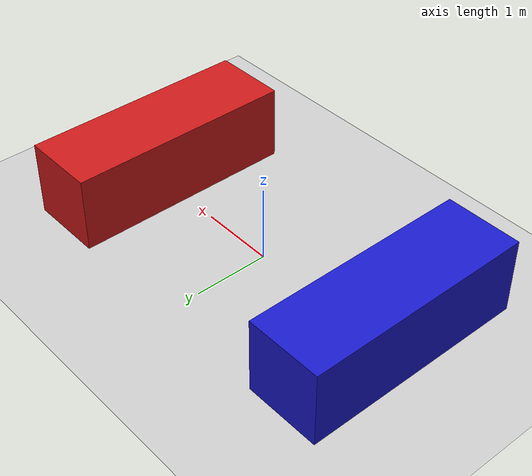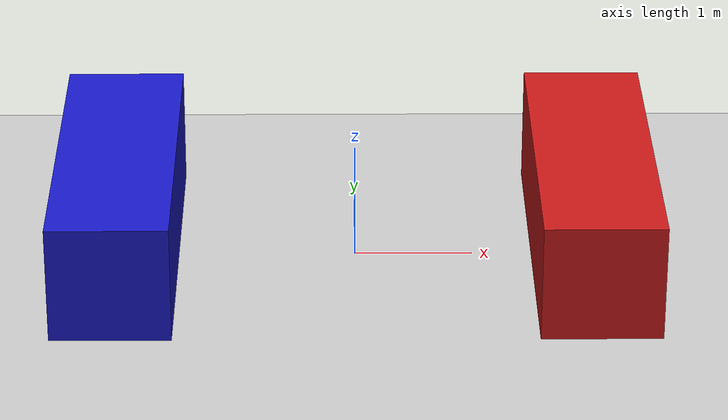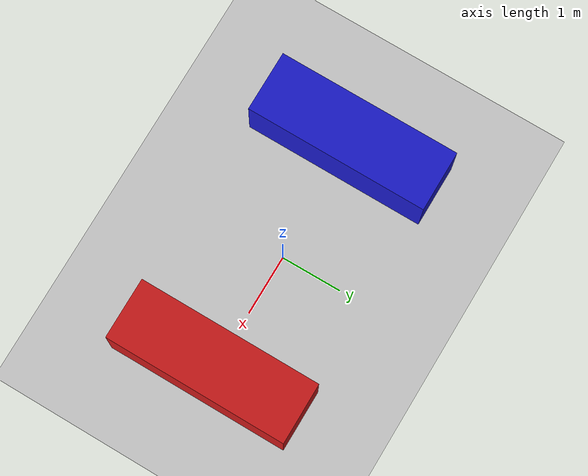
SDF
<?xml version="1.0" ?>
<sdf version="1.8">
  <world name="easybot_world">
    <plugin filename="libignition-gazebo-physics-system.so" name="ignition::gazebo::systems::Physics"></plugin>
    <plugin filename="libignition-gazebo-user-commands-system.so" name="ignition::gazebo::systems::UserCommands"></plugin>
    <plugin filename="libignition-gazebo-scene-broadcaster-system.so" name="ignition::gazebo::systems::SceneBroadcaster"></plugin>

    <plugin filename="libignition-gazebo-sensors-system.so" name="ignition::gazebo::systems::Sensors">
        <render_engine>ogre2</render_engine>
    </plugin>

    <light type="directional" name="sun">
      <cast_shadows>true</cast_shadows>
      <pose>0 0 10 0 0 0</pose>
      <diffuse>0.8 0.8 0.8 1</diffuse>
      <specular>0.2 0.2 0.2 1</specular>
      <direction>-0.5 0.1 -0.9</direction>
    </light>
    <model name="ground_plane">
      <static>true</static>
      <link name="link">
        <collision name="collision"><geometry><plane><normal>0 0 1</normal></plane></geometry></collision>
        <visual name="visual"><geometry><plane><normal>0 0 1</normal><size>100 100</size></plane></geometry><material><ambient>0.8 0.8 0.8 1</ambient></material></visual>
      </link>
    </model>

    <model name="muro_frente">
      <pose>2 0 0.5 0 0 0</pose>
      <link name="link">
        <collision name="collision"><geometry><box><size>1 3 1</size></box></geometry></collision>
        <visual name="visual"><geometry><box><size>1 3 1</size></box></geometry><material><ambient>0.8 0.1 0.1 1</ambient></material></visual>
      </link>
    </model>
    <model name="muro_atras">
      <pose>-2 0 0.5 0 0 0</pose>
      <link name="link">
        <collision name="collision"><geometry><box><size>1 3 1</size></box></geometry></collision>
        <visual name="visual"><geometry><box><size>1 3 1</size></box></geometry><material><ambient>0.1 0.1 0.8 1</ambient></material></visual>
      </link>
    </model>
  </world>
</sdf>
